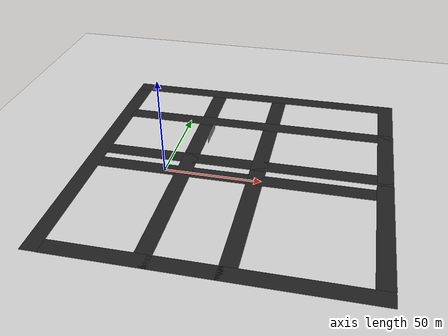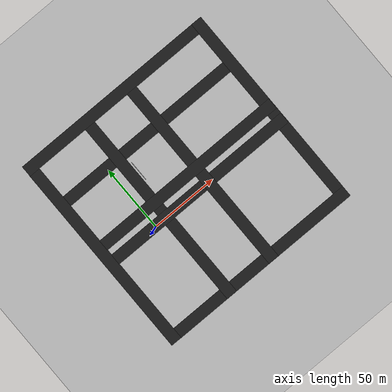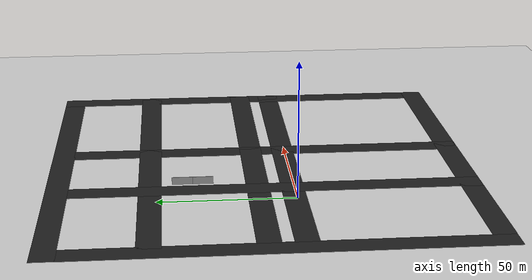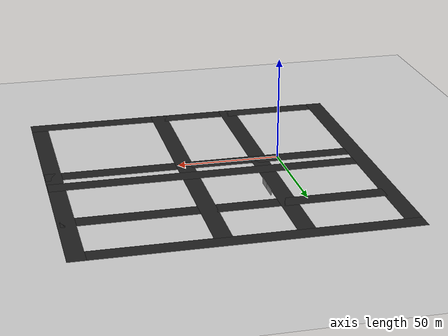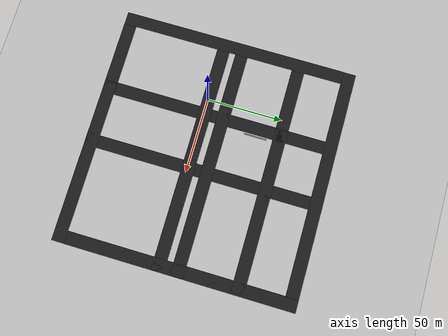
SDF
<sdf version="1.7">
 <world name="default">
  <scene>
   <grid>0</grid>
   <origin_visual>0</origin_visual>
   <ambient>0.85 0.85 0.85 1</ambient>
   <sky><clouds><speed>12</speed></clouds></sky>
   <background>0.35 0.35 0.35 1</background>
   <shadows>1</shadows>
  </scene>
  <light name="sun" type="directional">
   <pose>0 0 1000 0 -0 0</pose>
   <diffuse>0.8 0.8 0.8 1</diffuse>
   <specular>0.5 0.5 0.5 1</specular>
   <attenuation>
    <range>1000</range>
    <constant>0.9</constant>
    <linear>0.01</linear>
    <quadratic>0.001</quadratic>
   </attenuation>
   <direction>-0.5 0.1 -0.4</direction>
   <spot><inner_angle>0</inner_angle><outer_angle>0</outer_angle><falloff>0</falloff></spot>
  </light>
  <model name="ground_plane">
   <pose>50 0 -0.1 0 -0 0</pose>
   <static>1</static>
   <link name="link">
    <collision name="collision">
     <geometry><plane><normal>0 0 1</normal><size>200 200</size></plane></geometry>
     <surface>
      <contact><collide_bitmask>65535</collide_bitmask></contact>
      <friction><ode><mu>100</mu><mu2>50</mu2></ode></friction>
     </surface>
    </collision>
    <visual name="visual">
     <cast_shadows>0</cast_shadows>
     <geometry><plane><normal>0 0 1</normal><size>200 200</size></plane></geometry>
     <material>
      <script><uri>file://media/materials/scripts/gazebo.material</uri><name>Gazebo/Grey</name></script>
     </material>
    </visual>
   </link>
  </model>
  <gravity>0 0 -9.8</gravity>
  <magnetic_field>6e-06 2.3e-05 -4.2e-05</magnetic_field>
  <atmosphere type="adiabatic"/>
  <physics type="ode">
   <max_step_size>0.001</max_step_size>
   <real_time_factor>1</real_time_factor>
   <real_time_update_rate>1000</real_time_update_rate>
  </physics>
  <scene><ambient>0.4 0.4 0.4 1</ambient><background>0.7 0.7 0.7 1</background><shadows>1</shadows></scene>
  <spherical_coordinates>
   <surface_model>EARTH_WGS84</surface_model>
   <latitude_deg>-16</latitude_deg>
   <longitude_deg>-49</longitude_deg>
   <elevation>749</elevation>
   <heading_deg>0</heading_deg>
  </spherical_coordinates>
  <audio><device>default</device></audio>
  <model name="road_1">
   <link name="link">
    <inertial>
     <mass>1</mass>
     <inertia><ixx>1</ixx><ixy>0</ixy><ixz>0</ixz><iyy>1</iyy><iyz>0</iyz><izz>1</izz></inertia>
    </inertial>
    <visual name="visual">
     <laser_retro>4</laser_retro>
     <geometry><box><size>150 8.4 0.03</size></box></geometry>
     <material>
      <script><uri>file://media/materials/scripts/gazebo.material</uri><name>Gazebo/Black</name></script>
      <shader type="pixel"><normal_map>__default__</normal_map></shader>
     </material>
    </visual>
    <collision name="collision">
     <laser_retro>4</laser_retro>
     <geometry><box><size>150 8.4 0.03</size></box></geometry>
     <surface>
      <friction>
       <ode><mu>1</mu><mu2>1</mu2><fdir1>0 0 0</fdir1><slip1>0</slip1><slip2>0</slip2></ode>
       <torsional>
        <coefficient>1</coefficient>
        <patch_radius>0</patch_radius>
        <surface_radius>0</surface_radius>
        <use_patch_radius>1</use_patch_radius>
        <ode><slip>0</slip></ode>
       </torsional>
      </friction>
      <bounce><restitution_coefficient>0</restitution_coefficient><threshold>1e+06</threshold></bounce>
      <contact>
       <collide_without_contact>0</collide_without_contact>
       <collide_without_contact_bitmask>1</collide_without_contact_bitmask>
       <collide_bitmask>1</collide_bitmask>
       <ode>
        <soft_cfm>0</soft_cfm>
        <soft_erp>0.2</soft_erp>
        <kp>1e+13</kp>
        <kd>1</kd>
        <max_vel>0.01</max_vel>
        <min_depth>0</min_depth>
       </ode>
       <bullet>
        <split_impulse>1</split_impulse>
        <split_impulse_penetration_threshold>-0.01</split_impulse_penetration_threshold>
        <soft_cfm>0</soft_cfm>
        <soft_erp>0.2</soft_erp>
        <kp>1e+13</kp>
        <kd>1</kd>
       </bullet>
      </contact>
     </surface>
    </collision>
   </link>
   <static>1</static>
   <pose>39.552 13.2462 0 0 -0 0</pose>
  </model>
  <model name="road_2">
   <link name="link">
    <inertial>
     <mass>1</mass>
     <inertia><ixx>1</ixx><ixy>0</ixy><ixz>0</ixz><iyy>1</iyy><iyz>0</iyz><izz>1</izz></inertia>
    </inertial>
    <visual name="visual">
     <laser_retro>4</laser_retro>
     <geometry><box><size>150 8.4 0.03</size></box></geometry>
     <material>
      <script><uri>file://media/materials/scripts/gazebo.material</uri><name>Gazebo/Black</name></script>
      <shader type="pixel"><normal_map>__default__</normal_map></shader>
     </material>
    </visual>
    <collision name="collision">
     <laser_retro>4</laser_retro>
     <geometry><box><size>150 8.4 0.03</size></box></geometry>
     <surface>
      <friction>
       <ode><mu>1</mu><mu2>1</mu2><fdir1>0 0 0</fdir1><slip1>0</slip1><slip2>0</slip2></ode>
       <torsional>
        <coefficient>1</coefficient>
        <patch_radius>0</patch_radius>
        <surface_radius>0</surface_radius>
        <use_patch_radius>1</use_patch_radius>
        <ode><slip>0</slip></ode>
       </torsional>
      </friction>
      <bounce><restitution_coefficient>0</restitution_coefficient><threshold>1e+06</threshold></bounce>
      <contact>
       <collide_without_contact>0</collide_without_contact>
       <collide_without_contact_bitmask>1</collide_without_contact_bitmask>
       <collide_bitmask>1</collide_bitmask>
       <ode>
        <soft_cfm>0</soft_cfm>
        <soft_erp>0.2</soft_erp>
        <kp>1e+13</kp>
        <kd>1</kd>
        <max_vel>0.01</max_vel>
        <min_depth>0</min_depth>
       </ode>
       <bullet>
        <split_impulse>1</split_impulse>
        <split_impulse_penetration_threshold>-0.01</split_impulse_penetration_threshold>
        <soft_cfm>0</soft_cfm>
        <soft_erp>0.2</soft_erp>
        <kp>1e+13</kp>
        <kd>1</kd>
       </bullet>
      </contact>
     </surface>
    </collision>
   </link>
   <static>1</static>
   <pose>46.9183 6.59455 0 0 -0 1.57</pose>
  </model>
  <model name="road_0">
   <link name="link">
    <visual name="visual">
     <laser_retro>4</laser_retro>
     <geometry><box><size>150 8.4 0.03</size></box></geometry>
     <material>
      <script><uri>file://media/materials/scripts/gazebo.material</uri><name>Gazebo/Black</name></script>
      <shader type="pixel"/>
     </material>
    </visual>
    <collision name="collision">
     <laser_retro>4</laser_retro>
     <geometry><box><size>150 8.4 0.03</size></box></geometry>
     <surface>
      <friction>
       <ode><mu>1</mu><mu2>1</mu2><fdir1>0 0 0</fdir1><slip1>0</slip1><slip2>0</slip2></ode>
       <torsional>
        <coefficient>1</coefficient>
        <patch_radius>0</patch_radius>
        <surface_radius>0</surface_radius>
        <use_patch_radius>1</use_patch_radius>
        <ode><slip>0</slip></ode>
       </torsional>
      </friction>
      <bounce><restitution_coefficient>0</restitution_coefficient><threshold>1e+06</threshold></bounce>
      <contact>
       <collide_without_contact>0</collide_without_contact>
       <collide_without_contact_bitmask>1</collide_without_contact_bitmask>
       <collide_bitmask>1</collide_bitmask>
       <ode>
        <soft_cfm>0</soft_cfm>
        <soft_erp>0.2</soft_erp>
        <kp>1e+13</kp>
        <kd>1</kd>
        <max_vel>0.01</max_vel>
        <min_depth>0</min_depth>
       </ode>
       <bullet>
        <split_impulse>1</split_impulse>
        <split_impulse_penetration_threshold>-0.01</split_impulse_penetration_threshold>
        <soft_cfm>0</soft_cfm>
        <soft_erp>0.2</soft_erp>
        <kp>1e+13</kp>
        <kd>1</kd>
       </bullet>
      </contact>
     </surface>
    </collision>
   </link>
   <static>1</static>
   <pose>39.5541 0.79381 0 0 -0 0</pose>
  </model>
  <model name="road_3">
   <link name="link">
    <inertial>
     <mass>1</mass>
     <inertia><ixx>1</ixx><ixy>0</ixy><ixz>0</ixz><iyy>1</iyy><iyz>0</iyz><izz>1</izz></inertia>
    </inertial>
    <visual name="visual">
     <laser_retro>4</laser_retro>
     <geometry><box><size>150 8.4 0.03</size></box></geometry>
     <material>
      <script><uri>file://media/materials/scripts/gazebo.material</uri><name>Gazebo/Black</name></script>
      <shader type="pixel"><normal_map>__default__</normal_map></shader>
     </material>
    </visual>
    <collision name="collision">
     <laser_retro>4</laser_retro>
     <geometry><box><size>150 8.4 0.03</size></box></geometry>
     <surface>
      <friction>
       <ode><mu>1</mu><mu2>1</mu2><fdir1>0 0 0</fdir1><slip1>0</slip1><slip2>0</slip2></ode>
       <torsional>
        <coefficient>1</coefficient>
        <patch_radius>0</patch_radius>
        <surface_radius>0</surface_radius>
        <use_patch_radius>1</use_patch_radius>
        <ode><slip>0</slip></ode>
       </torsional>
      </friction>
      <bounce><restitution_coefficient>0</restitution_coefficient><threshold>1e+06</threshold></bounce>
      <contact>
       <collide_without_contact>0</collide_without_contact>
       <collide_without_contact_bitmask>1</collide_without_contact_bitmask>
       <collide_bitmask>1</collide_bitmask>
       <ode>
        <soft_cfm>0</soft_cfm>
        <soft_erp>0.2</soft_erp>
        <kp>1e+13</kp>
        <kd>1</kd>
        <max_vel>0.01</max_vel>
        <min_depth>0</min_depth>
       </ode>
       <bullet>
        <split_impulse>1</split_impulse>
        <split_impulse_penetration_threshold>-0.01</split_impulse_penetration_threshold>
        <soft_cfm>0</soft_cfm>
        <soft_erp>0.2</soft_erp>
        <kp>1e+13</kp>
        <kd>1</kd>
       </bullet>
      </contact>
     </surface>
    </collision>
   </link>
   <static>1</static>
   <pose>9.81067 6.4197 0 0 -0 1.57</pose>
  </model>
  <model name="grey_wall">
   <static>1</static>
   <link name="link">
    <pose>0 0 1.4 0 -0 0</pose>
    <collision name="collision">
     <laser_retro>15</laser_retro>
     <geometry><box><size>7.5 0.2 2.8</size></box></geometry>
    </collision>
    <visual name="visual">
     <laser_retro>15</laser_retro>
     <cast_shadows>0</cast_shadows>
     <geometry><box><size>7.5 0.2 2.8</size></box></geometry>
     <material>
      <script>
       <uri>model://grey_wall/materials/scripts</uri>
       <uri>model://grey_wall/materials/textures</uri>
       <name>vrc/grey_wall</name>
      </script>
     </material>
    </visual>
   </link>
   <pose>15.542 40.4401 0 0 -0 1.57</pose>
  </model>
  <model name="grey_wall_0">
   <static>1</static>
   <link name="link">
    <pose>0 0 1.4 0 -0 0</pose>
    <collision name="collision">
     <laser_retro>15</laser_retro>
     <geometry><box><size>7.5 0.2 2.8</size></box></geometry>
    </collision>
    <visual name="visual">
     <laser_retro>15</laser_retro>
     <cast_shadows>0</cast_shadows>
     <geometry><box><size>7.5 0.2 2.8</size></box></geometry>
     <material>
      <script>
       <uri>model://grey_wall/materials/scripts</uri>
       <uri>model://grey_wall/materials/textures</uri>
       <name>vrc/grey_wall</name>
      </script>
     </material>
    </visual>
   </link>
   <pose>15.516 32.8876 0 0 -0 1.57</pose>
  </model>
  <model name="road">
   <static>1</static>
   <link name="link">
    <collision name="collision">
     <laser_retro>4</laser_retro>
     <geometry><box><size>150 8.4 0.03</size></box></geometry>
    </collision>
    <visual name="visual">
     <laser_retro>4</laser_retro>
     <geometry><box><size>150 8.4 0.03</size></box></geometry>
     <material>
      <script><uri>file://media/materials/scripts/gazebo.material</uri><name>Gazebo/Black</name></script>
     </material>
    </visual>
   </link>
   <pose>31.7018 85.4368 0 0 -0 0</pose>
  </model>
  <model name="road_4">
   <static>1</static>
   <link name="link">
    <collision name="collision">
     <laser_retro>4</laser_retro>
     <geometry><box><size>150 8.4 0.03</size></box></geometry>
    </collision>
    <visual name="visual">
     <laser_retro>4</laser_retro>
     <geometry><box><size>150 8.4 0.03</size></box></geometry>
     <material>
      <script><uri>file://media/materials/scripts/gazebo.material</uri><name>Gazebo/Black</name></script>
     </material>
    </visual>
   </link>
   <pose>-39.2937 6.41317 0 0 -0 1.57</pose>
  </model>
  <model name="road_5">
   <static>1</static>
   <link name="link">
    <collision name="collision">
     <laser_retro>4</laser_retro>
     <geometry><box><size>150 8.4 0.03</size></box></geometry>
    </collision>
    <visual name="visual">
     <laser_retro>4</laser_retro>
     <geometry><box><size>150 8.4 0.03</size></box></geometry>
     <material>
      <script><uri>file://media/materials/scripts/gazebo.material</uri><name>Gazebo/Black</name></script>
     </material>
    </visual>
   </link>
   <pose>39.7282 -64.4761 0 0 -0 0</pose>
  </model>
  <model name="road_6">
   <static>1</static>
   <link name="link">
    <collision name="collision">
     <laser_retro>4</laser_retro>
     <geometry><box><size>150 8.4 0.03</size></box></geometry>
    </collision>
    <visual name="visual">
     <laser_retro>4</laser_retro>
     <geometry><box><size>150 8.4 0.03</size></box></geometry>
     <material>
      <script><uri>file://media/materials/scripts/gazebo.material</uri><name>Gazebo/Black</name></script>
     </material>
    </visual>
   </link>
   <pose>110.676 14.6652 0 0 -0 1.57</pose>
  </model>
  <model name="road_7">
   <static>1</static>
   <link name="link">
    <collision name="collision">
     <laser_retro>4</laser_retro>
     <geometry><box><size>150 8.4 0.03</size></box></geometry>
    </collision>
    <visual name="visual">
     <laser_retro>4</laser_retro>
     <geometry><box><size>150 8.4 0.03</size></box></geometry>
     <material>
      <script><uri>file://media/materials/scripts/gazebo.material</uri><name>Gazebo/Black</name></script>
     </material>
    </visual>
   </link>
   <pose>38.4909 52.1908 0 0 -0 0</pose>
  </model>
  <plugin name="gazebo_ros_state" filename="libgazebo_ros_state.so">
   <ros><namespace>/world</namespace><remapping>/model_states:=/model_states</remapping></ros>
   <update_rate>1.0</update_rate>
   <always_on>1</always_on>
  </plugin>
 </world>
</sdf>
